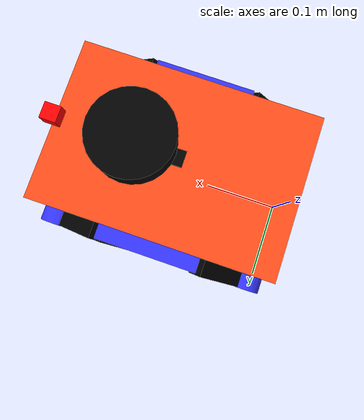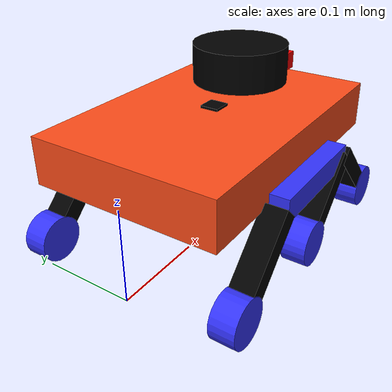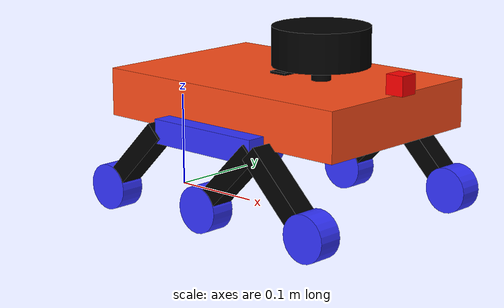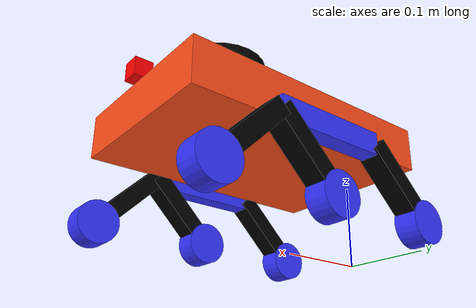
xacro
<?xml version="1.0"?>
<robot xmlns:xacro="http://www.ros.org/wiki/xacro" name="robot">
    <xacro:arg name="sim_mode" default="true"/>
    <!-- Real robot only (ignored in sim) -->
    <xacro:arg name="arduino_port" default="/dev/arduino"/>

    <xacro:include filename="robot_core.xacro" />
    <xacro:include filename="ros2_control.xacro" />
    <xacro:include filename="lidar.xacro" />
    <xacro:include filename="camera.xacro" />
    <xacro:include filename="face.xacro" />
    <xacro:include filename="imu.xacro" />
    <xacro:include filename="gt_odom.xacro" />

</robot>

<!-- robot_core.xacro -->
<robot xmlns:xacro="http://www.ros.org/wiki/xacro" >

    <xacro:include filename="inertial_macros.xacro"/>

    <xacro:property name="chassis_length" value="0.3"/>
    <xacro:property name="chassis_width" value="0.2"/>
    <xacro:property name="chassis_height" value="0.05"/>
    <xacro:property name="chassis_mass" value="5.0"/>

    <xacro:property name="rocker_length" value="0.13"/>
    <xacro:property name="rocker_width" value="0.02"/>
    <xacro:property name="rocker_height" value="0.2"/>
    <xacro:property name="tilted_link" value="0.1"/>
    <xacro:property name="rocker_mass" value="0.5"/>
    <xacro:property name="wheel_radius" value="0.0239"/>
    <xacro:property name="wheel_thickness" value="0.026"/>
    <xacro:property name="wheel_mass" value="0.05"/>

    <material name="orange">
        <color rgba="1 0.3 0.1 1"/>
    </material>
    <material name="blue">
        <color rgba="0.2 0.2 1 1"/>
    </material>
    <material name="black">
        <color rgba="0 0 0 1"/>
    </material>

    <link name="base_footprint"/>

    <joint name="base_footprint_joint" type="fixed">
        <parent link="base_footprint"/>
        <child link="base_link"/>
        <origin xyz="0 0 0.0946" rpy="0 0 0"/>
    </joint>

    <link name="base_link">
    </link>

    <joint name="chassis_joint" type="fixed">
        <parent link="base_link"/>
        <child link="chassis"/>
        <origin xyz="0 0 0"/>
    </joint>

    <link name="chassis">
        <visual>
            <origin xyz="${chassis_length/2} 0 ${chassis_height/2}"/>
            <geometry>
                <box size="${chassis_length} ${chassis_width} ${chassis_height}"/>
            </geometry>
            <material name="orange"/>
        </visual>
        <collision>
            <origin xyz="${chassis_length/2} 0 ${chassis_height/2}"/>
            <geometry>
                <box size="${chassis_length} ${chassis_width} ${chassis_height}"/>
            </geometry>
        </collision>
        <xacro:inertial_box mass="${chassis_mass}" x="${chassis_length}" y="${chassis_width}" z="${chassis_height}">
            <origin xyz="${chassis_length/2} 0 ${chassis_height/2}" rpy="0 0 0"/>
        </xacro:inertial_box>
    </link>

    <gazebo reference="chassis">
        <material>Gazebo/Orange</material>
    </gazebo>

    <joint name="left_wheel_rocker_joint" type="fixed">
        <parent link="base_link"/>
        <child link="left_rocker"/>
        <origin xyz="${chassis_length/2} ${chassis_width/2+rocker_width/2} 0" rpy="0 0 ${pi/2}" />
    </joint>

    <link name="left_rocker">
        <visual>
            <origin xyz="0 0 0" rpy="0 0 ${-pi/2}"/>
            <geometry>
                <box size="${rocker_length} ${rocker_width} 0.025"/>
            </geometry>
            <material name="blue"/>
        </visual>
        <collision>
            <origin xyz="${rocker_length/2} 0 ${rocker_height/2}"/>
            <geometry>
                <box size="${rocker_length} ${rocker_width} ${rocker_height}"/>
            </geometry>
        </collision>
        <xacro:inertial_box mass="${rocker_mass}" x="${rocker_length}" y="${rocker_width}" z="${rocker_height}">
            <origin xyz="${rocker_length/2} 0 ${rocker_height/2}" rpy="0 0 0"/>
        </xacro:inertial_box>
    </link>

    <joint name="tilted_joint" type="fixed">
        <parent link="left_rocker"/>
        <child link="tilted_link"/>
        <origin xyz="0 ${rocker_length/2} 0" rpy="${pi/4} 0 0" />
    </joint>

    <link name="tilted_link">
        <visual>
            <origin xyz="0 0 -${tilted_link/2}" rpy="0 ${pi/2} 0"/>
            <geometry>
                <box size="${tilted_link} ${rocker_width} 0.025"/>
            </geometry>
            <material name="black"/>
        </visual>
        <collision>
            <origin xyz="0 0 -${tilted_link/2}" rpy="0 ${pi/2} 0"/>
            <geometry>
                <box size="${tilted_link} ${rocker_width} 0.025"/>
            </geometry>
        </collision>
        <xacro:inertial_box mass="${rocker_mass}" x="${tilted_link}" y="${rocker_width}" z="0.025">
            <origin xyz="0 0 -${tilted_link/2}" rpy="0 ${pi/2} 0"/>
        </xacro:inertial_box>
    </link>

    <!-- Bogie pivot: TEMPORARILY fixed, see left_wheel_rocker_joint above. -->
    <joint name="left_bogie_joint" type="fixed">
        <parent link="left_rocker"/>
        <child link="left_bogie"/>
        <origin xyz="0 ${-rocker_length/2} 0" rpy="0 0 0" />
    </joint>

    <link name="left_bogie">
        <xacro:inertial_box mass="0.05" x="0.02" y="0.02" z="0.02">
            <origin xyz="0 0 0" rpy="0 0 0"/>
        </xacro:inertial_box>
    </link>

    <joint name="tilted_two_joint" type="fixed">
        <parent link="left_bogie"/>
        <child link="tilted_two_link"/>
        <origin xyz="0 0 0" rpy="${-pi/4} 0 0" />
    </joint>

    <link name="tilted_two_link">
        <visual>
            <origin xyz="0 0 -${tilted_link/2}" rpy="0 ${pi/2} 0"/>
            <geometry>
                <box size="${tilted_link} ${rocker_width} 0.025"/>
            </geometry>
            <material name="black"/>
        </visual>
        <collision>
            <origin xyz="0 0 -${tilted_link/2}" rpy="0 ${pi/2} 0"/>
            <geometry>
                <box size="${tilted_link} ${rocker_width} 0.025"/>
            </geometry>
        </collision>
        <xacro:inertial_box mass="${rocker_mass}" x="${tilted_link}" y="${rocker_width}" z="0.025">
            <origin xyz="0 0 -${tilted_link/2}" rpy="0 ${pi/2} 0"/>
        </xacro:inertial_box>
    </link>

    <joint name="left_wheel_one_joint" type="continuous">
        <parent link="tilted_two_link"/>
        <child link="left_wheel_one"/>
        <origin xyz="0 0 ${-tilted_link + 0.002}" rpy="0 ${pi/2} 0" />
        <axis xyz="0 0 1"/>
    </joint>

    <link name="left_wheel_one">
        <visual>
            <geometry>
                <cylinder radius="${wheel_radius}" length="${wheel_thickness}"/>
            </geometry>
            <material name="blue"/>
        </visual>
        <collision>
            <geometry>
                <sphere radius="${wheel_radius}"/>
            </geometry>
        </collision>
        <xacro:inertial_cylinder mass="${wheel_mass}" length="${wheel_thickness}" radius="${wheel_radius}">
            <origin xyz="0 0 0" rpy="0 0 0"/>
        </xacro:inertial_cylinder>
    </link>

    <gazebo reference="left_wheel_one">
        <material>Gazebo/Blue</material>
    </gazebo>

    <joint name="tilted_three_joint" type="fixed">
        <parent link="left_bogie"/>
        <child link="tilted_three_link"/>
        <origin xyz="0 0 0" rpy="${pi/4} 0 0" />
    </joint>

    <link name="tilted_three_link">
        <visual>
            <origin xyz="0 0 -${tilted_link/2}" rpy="0 ${pi/2} 0"/>
            <geometry>
                <box size="${tilted_link} ${rocker_width} 0.025"/>
            </geometry>
            <material name="black"/>
        </visual>
        <collision>
            <origin xyz="0 0 -${tilted_link/2}" rpy="0 ${pi/2} 0"/>
            <geometry>
                <box size="${tilted_link} ${rocker_width} 0.025"/>
            </geometry>
        </collision>
        <xacro:inertial_box mass="${rocker_mass}" x="${tilted_link}" y="${rocker_width}" z="0.025">
            <origin xyz="0 0 -${tilted_link/2}" rpy="0 ${pi/2} 0"/>
        </xacro:inertial_box>
    </link>

    <joint name="left_wheel_three_joint" type="continuous">
        <parent link="tilted_three_link"/>
        <child link="left_wheel_three"/>
        <origin xyz="0 0 ${-tilted_link + 0.002}" rpy="0 ${pi/2} 0" />
        <axis xyz="0 0 1"/>
    </joint>

    <link name="left_wheel_three">
        <visual>
            <geometry>
                <cylinder radius="${wheel_radius}" length="${wheel_thickness}"/>
            </geometry>
            <material name="blue"/>
        </visual>
        <collision>
            <geometry>
                <sphere radius="${wheel_radius}"/>
            </geometry>
        </collision>
        <xacro:inertial_cylinder mass="${wheel_mass}" length="${wheel_thickness}" radius="${wheel_radius}">
            <origin xyz="0 0 0" rpy="0 0 0"/>
        </xacro:inertial_cylinder>
    </link>

    <gazebo reference="left_wheel_three">
        <material>Gazebo/Blue</material>
    </gazebo>

    <joint name="left_wheel_two_joint" type="continuous">
        <parent link="tilted_link"/>
        <child link="left_wheel_two"/>
        <origin xyz="0 0 ${-tilted_link}" rpy="0 ${pi/2} 0" />
        <axis xyz="0 0 1"/>
    </joint>

    <link name="left_wheel_two">
        <visual>
            <geometry>
                <cylinder radius="${wheel_radius}" length="${wheel_thickness}"/>
            </geometry>
            <material name="blue"/>
        </visual>
        <collision>
            <geometry>
                <sphere radius="${wheel_radius}"/>
            </geometry>
        </collision>
        <xacro:inertial_cylinder mass="${wheel_mass}" length="${wheel_thickness}" radius="${wheel_radius}">
            <origin xyz="0 0 0" rpy="0 0 0"/>
        </xacro:inertial_cylinder>
    </link>

    <gazebo reference="left_wheel_two">
        <material>Gazebo/Blue</material>
        <mu1>0.6</mu1>
        <mu2>0.1</mu2>
        <fdir1>1 0 0</fdir1>
    </gazebo>

    <joint name="right_wheel_rocker_joint" type="fixed">
        <parent link="base_link"/>
        <child link="right_rocker"/>
        <origin xyz="${chassis_length/2} ${-chassis_width/2-rocker_width/2} 0" rpy="0 0 ${pi/2}" />
    </joint>

    <link name="right_rocker">
        <visual>
            <origin xyz="0 0 0" rpy="0 0 ${-pi/2}"/>
            <geometry>
                <box size="${rocker_length} ${rocker_width} 0.025"/>
            </geometry>
            <material name="blue"/>
        </visual>
        <collision>
            <origin xyz="${rocker_length/2} 0 ${rocker_height/2}"/>
            <geometry>
                <box size="${rocker_length} ${rocker_width} ${rocker_height}"/>
            </geometry>
        </collision>
        <xacro:inertial_box mass="${rocker_mass}" x="${rocker_length}" y="${rocker_width}" z="${rocker_height}">
            <origin xyz="${rocker_length/2} 0 ${rocker_height/2}" rpy="0 0 0"/>
        </xacro:inertial_box>
    </link>

    <joint name="tilted_joint_two" type="fixed">
        <parent link="right_rocker"/>
        <child link="tilted_link_two"/>
        <origin xyz="0 ${rocker_length/2} 0" rpy="${pi/4} 0 0" />
    </joint>

    <link name="tilted_link_two">
        <visual>
            <origin xyz="0 0 -${tilted_link/2}" rpy="0 ${pi/2} 0"/>
            <geometry>
                <box size="${tilted_link} ${rocker_width} 0.025"/>
            </geometry>
            <material name="black"/>
        </visual>
        <collision>
            <origin xyz="0 0 -${tilted_link/2}" rpy="0 ${pi/2} 0"/>
            <geometry>
                <box size="${tilted_link} ${rocker_width} 0.025"/>
            </geometry>
        </collision>
        <xacro:inertial_box mass="${rocker_mass}" x="${tilted_link}" y="${rocker_width}" z="0.025">
            <origin xyz="0 0 -${tilted_link/2}" rpy="0 ${pi/2} 0"/>
        </xacro:inertial_box>
    </link>

    <joint name="right_bogie_joint" type="fixed">
        <parent link="right_rocker"/>
        <child link="right_bogie"/>
        <origin xyz="0 ${-rocker_length/2} 0" rpy="0 0 0" />
    </joint>

    <link name="right_bogie">
        <xacro:inertial_box mass="0.05" x="0.02" y="0.02" z="0.02">
            <origin xyz="0 0 0" rpy="0 0 0"/>
        </xacro:inertial_box>
    </link>

    <joint name="tilted_two_joint_two" type="fixed">
        <parent link="right_bogie"/>
        <child link="tilted_two_link_two"/>
        <origin xyz="0 0 0" rpy="${-pi/4} 0 0" />
    </joint>

    <link name="tilted_two_link_two">
        <visual>
            <origin xyz="0 0 -${tilted_link/2}" rpy="0 ${pi/2} 0"/>
            <geometry>
                <box size="${tilted_link} ${rocker_width} 0.025"/>
            </geometry>
            <material name="black"/>
        </visual>
        <collision>
            <origin xyz="0 0 -${tilted_link/2}" rpy="0 ${pi/2} 0"/>
            <geometry>
                <box size="${tilted_link} ${rocker_width} 0.025"/>
            </geometry>
        </collision>
        <xacro:inertial_box mass="${rocker_mass}" x="${tilted_link}" y="${rocker_width}" z="0.025">
            <origin xyz="0 0 -${tilted_link/2}" rpy="0 ${pi/2} 0"/>
        </xacro:inertial_box>
    </link>

    <joint name="right_wheel_one_joint" type="continuous">
        <parent link="tilted_two_link_two"/>
        <child link="right_wheel_one"/>
        <origin xyz="0 0 ${-tilted_link + 0.002}" rpy="0 ${pi/2} 0" />
        <axis xyz="0 0 1"/>
    </joint>

    <link name="right_wheel_one">
        <visual>
            <geometry>
                <cylinder radius="${wheel_radius}" length="${wheel_thickness}"/>
            </geometry>
            <material name="blue"/>
        </visual>
        <collision>
            <geometry>
                <sphere radius="${wheel_radius}"/>
            </geometry>
        </collision>
        <xacro:inertial_cylinder mass="${wheel_mass}" length="${wheel_thickness}" radius="${wheel_radius}">
            <origin xyz="0 0 0" rpy="0 0 0"/>
        </xacro:inertial_cylinder>
    </link>

    <gazebo reference="right_wheel_one">
        <material>Gazebo/Blue</material>
    </gazebo>

    <joint name="tilted_two_joint_three" type="fixed">
        <parent link="right_bogie"/>
        <child link="tilted_two_link_three"/>
        <origin xyz="0 0 0" rpy="${pi/4} 0 0" />
    </joint>

    <link name="tilted_two_link_three">
        <visual>
            <origin xyz="0 0 -${tilted_link/2}" rpy="0 ${pi/2} 0"/>
            <geometry>
                <box size="${tilted_link} ${rocker_width} 0.025"/>
            </geometry>
            <material name="black"/>
        </visual>
        <collision>
            <origin xyz="0 0 -${tilted_link/2}" rpy="0 ${pi/2} 0"/>
            <geometry>
                <box size="${tilted_link} ${rocker_width} 0.025"/>
            </geometry>
        </collision>
        <xacro:inertial_box mass="${rocker_mass}" x="${tilted_link}" y="${rocker_width}" z="0.025">
            <origin xyz="0 0 -${tilted_link/2}" rpy="0 ${pi/2} 0"/>
        </xacro:inertial_box>
    </link>

    <joint name="right_wheel_three_joint" type="continuous">
        <parent link="tilted_two_link_three"/>
        <child link="right_wheel_three"/>
        <origin xyz="0 0 ${-tilted_link + 0.002}" rpy="0 ${pi/2} 0" />
        <axis xyz="0 0 1"/>
    </joint>

    <link name="right_wheel_three">
        <visual>
            <geometry>
                <cylinder radius="${wheel_radius}" length="${wheel_thickness}"/>
            </geometry>
            <material name="blue"/>
        </visual>
        <collision>
            <geometry>
                <sphere radius="${wheel_radius}"/>
            </geometry>
        </collision>
        <xacro:inertial_cylinder mass="${wheel_mass}" length="${wheel_thickness}" radius="${wheel_radius}">
            <origin xyz="0 0 0" rpy="0 0 0"/>
        </xacro:inertial_cylinder>
    </link>

    <gazebo reference="right_wheel_three">
        <material>Gazebo/Blue</material>
    </gazebo>

    <joint name="right_wheel_two_joint" type="continuous">
        <parent link="tilted_link_two"/>
        <child link="right_wheel_two"/>
        <origin xyz="0 0 ${-tilted_link}" rpy="0 ${pi/2} 0" />
        <axis xyz="0 0 1"/>
    </joint>

    <link name="right_wheel_two">
        <visual>
            <geometry>
                <cylinder radius="${wheel_radius}" length="${wheel_thickness}"/>
            </geometry>
            <material name="blue"/>
        </visual>
        <collision>
            <geometry>
                <sphere radius="${wheel_radius}"/>
            </geometry>
        </collision>
        <xacro:inertial_cylinder mass="${wheel_mass}" length="${wheel_thickness}" radius="${wheel_radius}">
            <origin xyz="0 0 0" rpy="0 0 0"/>
        </xacro:inertial_cylinder>
    </link>

    <gazebo reference="right_wheel_two">
        <material>Gazebo/Blue</material>
        <mu1>0.6</mu1>
        <mu2>0.1</mu2>
        <fdir1>1 0 0</fdir1>
    </gazebo>

    <gazebo reference="left_wheel_one">
        <mu1>0.6</mu1>      <!-- along rolling direction: keep for climbing -->
        <mu2>0.1</mu2>      <!-- perpendicular/lateral: lower so it can skid to turn -->
        <fdir1>1 0 0</fdir1> <!-- vector defining the "mu1" direction -->
    </gazebo>
    <gazebo reference="left_wheel_three">
        <mu1>0.6</mu1>
        <mu2>0.1</mu2>
        <fdir1>1 0 0</fdir1>
    </gazebo>
    <gazebo reference="right_wheel_one">
        <mu1>0.6</mu1>
        <mu2>0.1</mu2>
        <fdir1>1 0 0</fdir1>
    </gazebo>
    <gazebo reference="right_wheel_three">
        <mu1>0.6</mu1>
        <mu2>0.1</mu2>
        <fdir1>1 0 0</fdir1>
    </gazebo>

</robot>

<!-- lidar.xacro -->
<robot xmlns:xacro="http://www.ros.org/wiki/xacro" >

    <joint name="laser_joint" type="fixed">
        <parent link="chassis"/>
        <child link="laser_frame"/>
        <origin xyz="0.2 0 0.085" rpy="0 0 0"/>
    </joint>

    <link name="laser_frame">
        <visual>
            <geometry>
                <cylinder radius="0.05" length="0.04"/>
            </geometry>
            <material name="black"/>
        </visual>
        <visual>
            <origin xyz="0 0 -0.05"/>
            <geometry>
                <cylinder radius="0.01" length="0.1"/>
            </geometry>
            <material name="black"/>
        </visual>
        <collision>
            <geometry>
                <cylinder radius="0.05" length="0.04"/>
            </geometry>
        </collision>
        <xacro:inertial_cylinder mass="0.1" length="0.04" radius="0.05">
            <origin xyz="0 0 0" rpy="0 0 0"/>
        </xacro:inertial_cylinder>
    </link>

    <gazebo reference="laser_frame">
        <material>Gazebo/Black</material>

        <sensor name="laser" type="gpu_lidar">
            <pose>0 0 0 0 0 0</pose>
            <topic>scan</topic>
            <gz_frame_id>laser_frame</gz_frame_id>
            <update_rate>10</update_rate>
            <visualize>false</visualize>
            <always_on>true</always_on>
            <lidar>
                <scan>
                    <horizontal>
                        <samples>360</samples>
                        <resolution>1</resolution>
                        <min_angle>-3.14159</min_angle>
                        <max_angle>3.14159</max_angle>
                    </horizontal>
                </scan>
                <range>
                    <min>0.3</min>
                    <max>12</max>
                    <resolution>0.01</resolution>
                </range>
            </lidar>
        </sensor>
    </gazebo>

</robot>

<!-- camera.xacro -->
<robot xmlns:xacro="http://www.ros.org/wiki/xacro" >

    <xacro:property name="camera_size" value="0.02"/>

    <material name="red">
        <color rgba="1 0 0 1"/>
    </material>

    <!-- x = chassis_length (0.3), i.e. flush with the front face, so the
         chassis body itself doesn't clip the bottom of the camera's FOV -->
    <joint name="camera_joint" type="fixed">
        <parent link="chassis"/>
        <child link="camera_link"/>
        <origin xyz="0.3 0 0.06" rpy="0 0 0"/>
    </joint>

    <link name="camera_link">
        <visual>
            <geometry>
                <box size="${camera_size} ${camera_size} ${camera_size}"/>
            </geometry>
            <material name="red"/>
        </visual>
        <collision>
            <geometry>
                <box size="${camera_size} ${camera_size} ${camera_size}"/>
            </geometry>
        </collision>
        <xacro:inertial_box mass="0.02" x="${camera_size}" y="${camera_size}" z="${camera_size}">
            <origin xyz="0 0 0" rpy="0 0 0"/>
        </xacro:inertial_box>
    </link>

    <joint name="camera_optical_joint" type="fixed">
        <parent link="camera_link"/>
        <child link="camera_link_optical"/>
        <origin xyz="0 0 0" rpy="${-pi/2} 0 ${-pi/2}"/>
    </joint>

    <link name="camera_link_optical"></link>

    <gazebo reference="camera_link">
        <material>Gazebo/Red</material>
        <sensor name="camera" type="camera">
            <pose>0 0 0 0 0 0</pose>
            <topic>camera/image</topic>
            <gz_frame_id>camera_link_optical</gz_frame_id>
            <update_rate>15</update_rate>
            <visualize>false</visualize>
            <always_on>true</always_on>
            <camera>
                <horizontal_fov>1.089</horizontal_fov>
                <image>
                    <width>640</width>
                    <height>480</height>
                    <format>R8G8B8</format>
                </image>
                <clip>
                    <near>0.05</near>
                    <far>15</far>
                </clip>
            </camera>
        </sensor>
    </gazebo>

</robot>

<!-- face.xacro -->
<robot xmlns:xacro="http://www.ros.org/wiki/xacro" >

    <joint name="face_joint" type="fixed">
        <parent link="chassis"/>
        <child link="face_link"/>
        <origin xyz="${chassis_length} 0 ${chassis_height/2}" rpy="0 0 0"/>
    </joint>

    <link name="face_link">

    </link>

    <gazebo reference="face_link">
        <material>Gazebo/Black</material>
    </gazebo>

</robot>

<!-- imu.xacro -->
<robot xmlns:xacro="http://www.ros.org/wiki/xacro" >

    <joint name="imu_joint" type="fixed">
        <parent link="chassis"/>
        <child link="imu_link"/>
        <origin xyz="0.15 0 0.05" rpy="0 0 0"/>
    </joint>

    <link name="imu_link">
        <visual>
            <geometry>
                <box size="0.02 0.02 0.005"/>
            </geometry>
            <material name="black"/>
        </visual>
        <collision>
            <geometry>
                <box size="0.02 0.02 0.005"/>
            </geometry>
        </collision>
        <xacro:inertial_box mass="0.01" x="0.02" y="0.02" z="0.005">
            <origin xyz="0 0 0" rpy="0 0 0"/>
        </xacro:inertial_box>
    </link>

    <gazebo reference="imu_link">
        <sensor name="imu_sensor" type="imu">
            <always_on>true</always_on>
            <update_rate>100</update_rate>
            <visualize>false</visualize>
            <topic>imu/data</topic>
            <gz_frame_id>imu_link</gz_frame_id>
        </sensor>
    </gazebo>

</robot>
